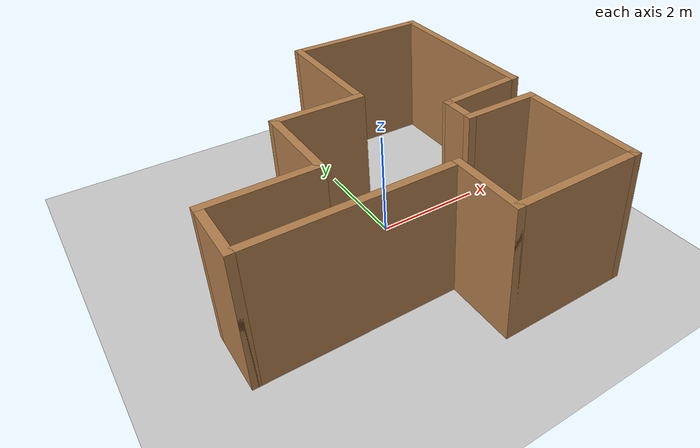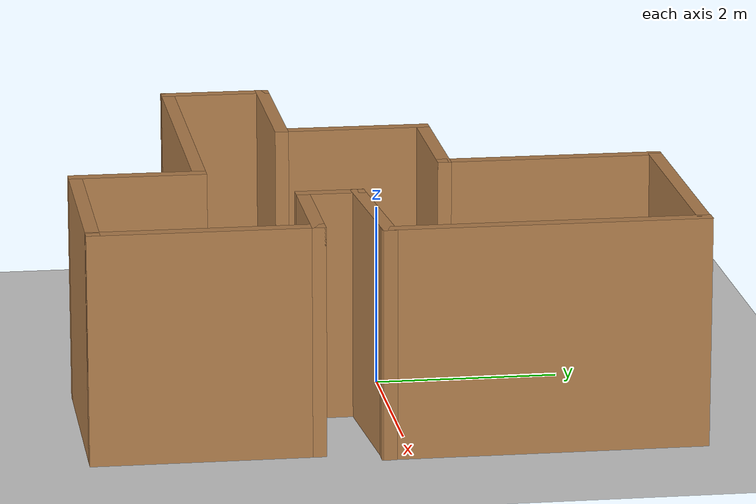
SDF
<sdf version="1.6">
 <world name="default">
  <light name="sun" type="directional">
   <pose>0 0 10 0 -0 0</pose>
   <diffuse>0.8 0.8 0.8 1</diffuse>
   <specular>0.2 0.2 0.2 1</specular>
   <attenuation>
    <range>1000</range>
    <constant>0.9</constant>
    <linear>0.01</linear>
    <quadratic>0.001</quadratic>
   </attenuation>
   <direction>-0.5 0.1 -0.9</direction>
  </light>
  <model name="ground_plane">
   <static>1</static>
   <link name="link">
    <collision name="collision">
     <geometry><plane><normal>0 0 1</normal><size>100 100</size></plane></geometry>
     <surface>
      <contact><collide_bitmask>65535</collide_bitmask></contact>
      <friction><ode><mu>100</mu><mu2>50</mu2></ode></friction>
     </surface>
    </collision>
    <visual name="visual">
     <cast_shadows>0</cast_shadows>
     <geometry><plane><normal>0 0 1</normal><size>100 100</size></plane></geometry>
     <material>
      <script><uri>file://media/materials/scripts/gazebo.material</uri><name>Gazebo/Grey</name></script>
     </material>
    </visual>
   </link>
  </model>
  <gravity>0 0 -9.8</gravity>
  <magnetic_field>6e-06 2.3e-05 -4.2e-05</magnetic_field>
  <atmosphere type="adiabatic"/>
  <physics name="default_physics" default="0" type="ode">
   <max_step_size>0.001</max_step_size>
   <real_time_factor>1</real_time_factor>
   <real_time_update_rate>1000</real_time_update_rate>
  </physics>
  <scene><ambient>0.4 0.4 0.4 1</ambient><background>0.7 0.7 0.7 1</background><shadows>1</shadows></scene>
  <spherical_coordinates>
   <surface_model>EARTH_WGS84</surface_model>
   <latitude_deg>0</latitude_deg>
   <longitude_deg>0</longitude_deg>
   <elevation>0</elevation>
   <heading_deg>0</heading_deg>
  </spherical_coordinates>
  <model name="simple_build">
   <pose>-0.364987 -0.107927 0 0 -0 0</pose>
   <link name="Wall_39">
    <collision name="Wall_39_Collision">
     <geometry><box><size>2.75 0.15 2.5</size></box></geometry>
     <pose>0 0 1.25 0 -0 0</pose>
    </collision>
    <visual name="Wall_39_Visual">
     <pose>0 0 1.25 0 -0 0</pose>
     <geometry><box><size>2.75 0.15 2.5</size></box></geometry>
     <material>
      <script><uri>file://media/materials/scripts/gazebo.material</uri><name>Gazebo/Wood</name></script>
      <ambient>1 1 1 1</ambient>
     </material>
     <meta><layer>0</layer></meta>
    </visual>
    <pose>1.66961 3.1965 0 0 -0 3.14159</pose>
   </link>
   <link name="Wall_40">
    <collision name="Wall_40_Collision">
     <geometry><box><size>2.5 0.15 2.5</size></box></geometry>
     <pose>0 0 1.25 0 -0 0</pose>
    </collision>
    <visual name="Wall_40_Visual">
     <pose>0 0 1.25 0 -0 0</pose>
     <geometry><box><size>2.5 0.15 2.5</size></box></geometry>
     <material>
      <script><uri>file://media/materials/scripts/gazebo.material</uri><name>Gazebo/Wood</name></script>
      <ambient>1 1 1 1</ambient>
     </material>
     <meta><layer>0</layer></meta>
    </visual>
    <pose>0.36961 2.0215 0 0 0 -1.5708</pose>
   </link>
   <link name="Wall_41">
    <collision name="Wall_41_Collision">
     <geometry><box><size>1.75 0.15 2.5</size></box></geometry>
     <pose>0 0 1.25 0 -0 0</pose>
    </collision>
    <visual name="Wall_41_Visual">
     <pose>0 0 1.25 0 -0 0</pose>
     <geometry><box><size>1.75 0.15 2.5</size></box></geometry>
     <material>
      <script><uri>file://media/materials/scripts/gazebo.material</uri><name>Gazebo/Wood</name></script>
      <ambient>1 1 1 1</ambient>
     </material>
     <meta><layer>0</layer></meta>
    </visual>
    <pose>-0.43039 0.846497 0 0 -0 3.14159</pose>
   </link>
   <link name="Wall_42">
    <collision name="Wall_42_Collision">
     <geometry><box><size>1.75 0.15 2.5</size></box></geometry>
     <pose>0 0 1.25 0 -0 0</pose>
    </collision>
    <visual name="Wall_42_Visual">
     <pose>0 0 1.25 0 -0 0</pose>
     <geometry><box><size>1.75 0.15 2.5</size></box></geometry>
     <material>
      <script><uri>file://media/materials/scripts/gazebo.material</uri><name>Gazebo/Wood</name></script>
      <ambient>1 1 1 1</ambient>
     </material>
     <meta><layer>0</layer></meta>
    </visual>
    <pose>-1.23039 0.046497 0 0 0 -1.5708</pose>
   </link>
   <link name="Wall_43">
    <collision name="Wall_43_Collision">
     <geometry><box><size>2 0.15 2.5</size></box></geometry>
     <pose>0 0 1.25 0 -0 0</pose>
    </collision>
    <visual name="Wall_43_Visual">
     <pose>0 0 1.25 0 -0 0</pose>
     <geometry><box><size>2 0.15 2.5</size></box></geometry>
     <material>
      <script><uri>file://media/materials/scripts/gazebo.material</uri><name>Gazebo/Wood</name></script>
      <ambient>1 1 1 1</ambient>
     </material>
     <meta><layer>0</layer></meta>
    </visual>
    <pose>-2.15539 -0.753503 0 0 -0 3.14159</pose>
   </link>
   <link name="Wall_44">
    <collision name="Wall_44_Collision">
     <geometry><box><size>1.25 0.15 2.5</size></box></geometry>
     <pose>0 0 1.25 0 -0 0</pose>
    </collision>
    <visual name="Wall_44_Visual">
     <pose>0 0 1.25 0 -0 0</pose>
     <geometry><box><size>1.25 0.15 2.5</size></box></geometry>
     <material>
      <script><uri>file://media/materials/scripts/gazebo.material</uri><name>Gazebo/Wood</name></script>
      <ambient>1 1 1 1</ambient>
     </material>
     <meta><layer>0</layer></meta>
    </visual>
    <pose>-3.08039 -1.3035 0 0 0 -1.5708</pose>
   </link>
   <link name="Wall_45">
    <collision name="Wall_45_Collision">
     <geometry><box><size>3.75 0.15 2.5</size></box></geometry>
     <pose>0 0 1.25 0 -0 0</pose>
    </collision>
    <visual name="Wall_45_Visual">
     <pose>0 0 1.25 0 -0 0</pose>
     <geometry><box><size>3.75 0.15 2.5</size></box></geometry>
     <material>
      <script><uri>file://media/materials/scripts/gazebo.material</uri><name>Gazebo/Wood</name></script>
      <ambient>1 1 1 1</ambient>
     </material>
     <meta><layer>0</layer></meta>
    </visual>
    <pose>-1.28039 -1.8535 0 0 -0 0</pose>
   </link>
   <link name="Wall_46">
    <collision name="Wall_46_Collision">
     <geometry><box><size>1.5 0.15 2.5</size></box></geometry>
     <pose>0 0 1.25 0 -0 0</pose>
    </collision>
    <visual name="Wall_46_Visual">
     <pose>0 0 1.25 0 -0 0</pose>
     <geometry><box><size>1.5 0.15 2.5</size></box></geometry>
     <material>
      <script><uri>file://media/materials/scripts/gazebo.material</uri><name>Gazebo/Wood</name></script>
      <ambient>1 1 1 1</ambient>
     </material>
     <meta><layer>0</layer></meta>
    </visual>
    <pose>0.51961 -2.5285 0 0 0 -1.5708</pose>
   </link>
   <link name="Wall_47">
    <collision name="Wall_47_Collision">
     <geometry><box><size>2.5 0.15 2.5</size></box></geometry>
     <pose>0 0 1.25 0 -0 0</pose>
    </collision>
    <visual name="Wall_47_Visual">
     <pose>0 0 1.25 0 -0 0</pose>
     <geometry><box><size>2.5 0.15 2.5</size></box></geometry>
     <material>
      <script><uri>file://media/materials/scripts/gazebo.material</uri><name>Gazebo/Wood</name></script>
      <ambient>1 1 1 1</ambient>
     </material>
     <meta><layer>0</layer></meta>
    </visual>
    <pose>1.69461 -3.2035 0 0 -0 0</pose>
   </link>
   <link name="Wall_48">
    <collision name="Wall_48_Collision">
     <geometry><box><size>2.5 0.15 2.5</size></box></geometry>
     <pose>0 0 1.25 0 -0 0</pose>
    </collision>
    <visual name="Wall_48_Visual">
     <pose>0 0 1.25 0 -0 0</pose>
     <geometry><box><size>2.5 0.15 2.5</size></box></geometry>
     <material>
      <script><uri>file://media/materials/scripts/gazebo.material</uri><name>Gazebo/Wood</name></script>
      <ambient>1 1 1 1</ambient>
     </material>
     <meta><layer>0</layer></meta>
    </visual>
    <pose>2.86961 -2.0285 0 0 -0 1.5708</pose>
   </link>
   <link name="Wall_49">
    <collision name="Wall_49_Collision">
     <geometry><box><size>1.5 0.15 2.5</size></box></geometry>
     <pose>0 0 1.25 0 -0 0</pose>
    </collision>
    <visual name="Wall_49_Visual">
     <pose>0 0 1.25 0 -0 0</pose>
     <geometry><box><size>1.5 0.15 2.5</size></box></geometry>
     <material>
      <script><uri>file://media/materials/scripts/gazebo.material</uri><name>Gazebo/Wood</name></script>
      <ambient>1 1 1 1</ambient>
     </material>
     <meta><layer>0</layer></meta>
    </visual>
    <pose>2.19461 -0.853503 0 0 -0 3.14159</pose>
   </link>
   <link name="Wall_50">
    <collision name="Wall_50_Collision">
     <geometry><box><size>0.75 0.15 2.5</size></box></geometry>
     <pose>0 0 1.25 0 -0 0</pose>
    </collision>
    <visual name="Wall_50_Visual">
     <pose>0 0 1.25 0 -0 0</pose>
     <geometry><box><size>0.75 0.15 2.5</size></box></geometry>
     <material>
      <script><uri>file://media/materials/scripts/gazebo.material</uri><name>Gazebo/Wood</name></script>
      <ambient>1 1 1 1</ambient>
     </material>
     <meta><layer>0</layer></meta>
    </visual>
    <pose>1.51961 -0.553503 0 0 -0 1.5708</pose>
   </link>
   <link name="Wall_51">
    <collision name="Wall_51_Collision">
     <geometry><box><size>1.70973 0.15 2.5</size></box></geometry>
     <pose>0 0 1.25 0 -0 0</pose>
    </collision>
    <visual name="Wall_51_Visual">
     <pose>0 0 1.25 0 -0 0</pose>
     <geometry><box><size>1.70973 0.15 2.5</size></box></geometry>
     <material>
      <script><uri>file://media/materials/scripts/gazebo.material</uri><name>Gazebo/Wood</name></script>
      <ambient>1 1 1 1</ambient>
     </material>
     <meta><layer>0</layer></meta>
    </visual>
    <pose>2.29732 -0.195542 0 0 -0 0.074391</pose>
   </link>
   <link name="Wall_52">
    <collision name="Wall_52_Collision">
     <geometry><box><size>3.5 0.15 2.5</size></box></geometry>
     <pose>0 0 1.25 0 -0 0</pose>
    </collision>
    <visual name="Wall_52_Visual">
     <pose>0 0 1.25 0 -0 0</pose>
     <geometry><box><size>3.5 0.15 2.5</size></box></geometry>
     <material>
      <script><uri>file://media/materials/scripts/gazebo.material</uri><name>Gazebo/Wood</name></script>
      <ambient>1 1 1 1</ambient>
     </material>
     <meta><layer>0</layer></meta>
    </visual>
    <pose>3.06611 1.5285 0 0 -0 1.5708</pose>
   </link>
   <static>1</static>
  </model>
 </world>
</sdf>
